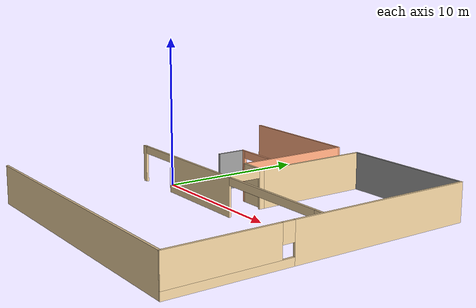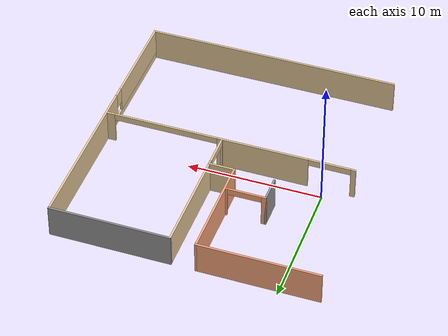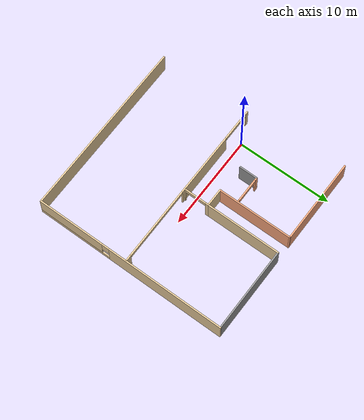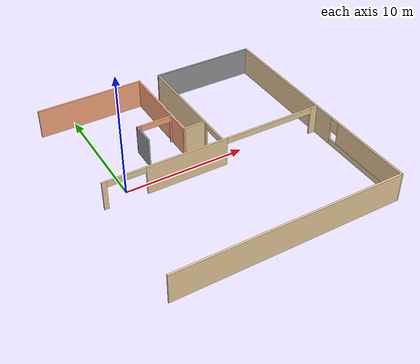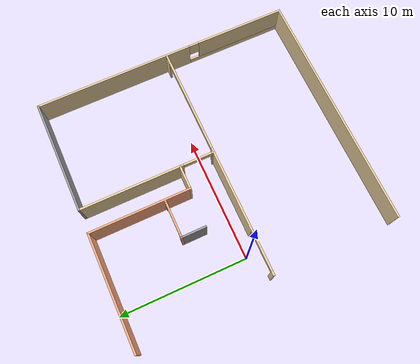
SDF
<sdf version="1.6">
 <model name="myhouse">
  <link name="Wall_15">
   <pose>12.2 9.625 0 0 -0 3.14159</pose>
   <visual name="Wall_15_Visual">
    <pose>0 0 1.25 0 -0 0</pose>
    <geometry><box><size>9 0.15 2.5</size></box></geometry>
    <material>
     <script><uri>file://media/materials/scripts/gazebo.material</uri><name>Gazebo/Grey</name></script>
     <ambient>1 1 1 1</ambient>
     <diffuse>0.7 0.7 0.7 1</diffuse>
     <specular>0.01 0.01 0.01 1</specular>
     <emissive>0 0 0 1</emissive>
    </material>
   </visual>
   <collision name="Wall_15_Collision">
    <pose>0 0 1.25 0 -0 0</pose>
    <geometry><box><size>9 0.15 2.5</size></box></geometry>
    <surface>
     <friction>
      <ode><mu>1</mu><mu2>1</mu2><fdir1>0 0 0</fdir1><slip1>0</slip1><slip2>0</slip2></ode>
      <torsional>
       <coefficient>1</coefficient>
       <patch_radius>0</patch_radius>
       <surface_radius>0</surface_radius>
       <use_patch_radius>1</use_patch_radius>
       <ode><slip>0</slip></ode>
      </torsional>
     </friction>
     <bounce><restitution_coefficient>0</restitution_coefficient><threshold>1e+06</threshold></bounce>
     <contact>
      <collide_without_contact>0</collide_without_contact>
      <collide_without_contact_bitmask>1</collide_without_contact_bitmask>
      <collide_bitmask>1</collide_bitmask>
      <ode>
       <soft_cfm>0</soft_cfm>
       <soft_erp>0.2</soft_erp>
       <kp>1e+13</kp>
       <kd>1</kd>
       <max_vel>0.01</max_vel>
       <min_depth>0</min_depth>
      </ode>
      <bullet>
       <split_impulse>1</split_impulse>
       <split_impulse_penetration_threshold>-0.01</split_impulse_penetration_threshold>
       <soft_cfm>0</soft_cfm>
       <soft_erp>0.2</soft_erp>
       <kp>1e+13</kp>
       <kd>1</kd>
      </bullet>
     </contact>
    </surface>
   </collision>
  </link>
  <link name="Wall_17">
   <pose>7.775 5.7 0 0 0 -1.5708</pose>
   <visual name="Wall_17_Visual">
    <pose>0 0 1.25 0 -0 0</pose>
    <geometry><box><size>8 0.15 2.5</size></box></geometry>
    <material>
     <script><uri>file://media/materials/scripts/gazebo.material</uri><name>Gazebo/Grey</name></script>
     <ambient>0.921569 0.807843 0.615686 1</ambient>
     <diffuse>0.7 0.7 0.7 1</diffuse>
     <specular>0.01 0.01 0.01 1</specular>
     <emissive>0 0 0 1</emissive>
    </material>
   </visual>
   <collision name="Wall_17_Collision">
    <pose>0 0 1.25 0 -0 0</pose>
    <geometry><box><size>8 0.15 2.5</size></box></geometry>
    <surface>
     <friction>
      <ode><mu>1</mu><mu2>1</mu2><fdir1>0 0 0</fdir1><slip1>0</slip1><slip2>0</slip2></ode>
      <torsional>
       <coefficient>1</coefficient>
       <patch_radius>0</patch_radius>
       <surface_radius>0</surface_radius>
       <use_patch_radius>1</use_patch_radius>
       <ode><slip>0</slip></ode>
      </torsional>
     </friction>
     <bounce><restitution_coefficient>0</restitution_coefficient><threshold>1e+06</threshold></bounce>
     <contact>
      <collide_without_contact>0</collide_without_contact>
      <collide_without_contact_bitmask>1</collide_without_contact_bitmask>
      <collide_bitmask>1</collide_bitmask>
      <ode>
       <soft_cfm>0</soft_cfm>
       <soft_erp>0.2</soft_erp>
       <kp>1e+13</kp>
       <kd>1</kd>
       <max_vel>0.01</max_vel>
       <min_depth>0</min_depth>
      </ode>
      <bullet>
       <split_impulse>1</split_impulse>
       <split_impulse_penetration_threshold>-0.01</split_impulse_penetration_threshold>
       <soft_cfm>0</soft_cfm>
       <soft_erp>0.2</soft_erp>
       <kp>1e+13</kp>
       <kd>1</kd>
      </bullet>
     </contact>
    </surface>
   </collision>
  </link>
  <link name="Wall_19">
   <pose>6.85 1.775 0 0 -0 3.14159</pose>
   <visual name="Wall_19_Visual">
    <pose>0 0 1.25 0 -0 0</pose>
    <geometry><box><size>2 0.15 2.5</size></box></geometry>
    <material>
     <script><uri>file://media/materials/scripts/gazebo.material</uri><name>Gazebo/Grey</name></script>
     <ambient>0.921569 0.807843 0.615686 1</ambient>
     <diffuse>0.7 0.7 0.7 1</diffuse>
     <specular>0.01 0.01 0.01 1</specular>
     <emissive>0 0 0 1</emissive>
    </material>
   </visual>
   <collision name="Wall_19_Collision">
    <pose>0 0 1.25 0 -0 0</pose>
    <geometry><box><size>2 0.15 2.5</size></box></geometry>
    <surface>
     <friction>
      <ode><mu>1</mu><mu2>1</mu2><fdir1>0 0 0</fdir1><slip1>0</slip1><slip2>0</slip2></ode>
      <torsional>
       <coefficient>1</coefficient>
       <patch_radius>0</patch_radius>
       <surface_radius>0</surface_radius>
       <use_patch_radius>1</use_patch_radius>
       <ode><slip>0</slip></ode>
      </torsional>
     </friction>
     <bounce><restitution_coefficient>0</restitution_coefficient><threshold>1e+06</threshold></bounce>
     <contact>
      <collide_without_contact>0</collide_without_contact>
      <collide_without_contact_bitmask>1</collide_without_contact_bitmask>
      <collide_bitmask>1</collide_bitmask>
      <ode>
       <soft_cfm>0</soft_cfm>
       <soft_erp>0.2</soft_erp>
       <kp>1e+13</kp>
       <kd>1</kd>
       <max_vel>0.01</max_vel>
       <min_depth>0</min_depth>
      </ode>
      <bullet>
       <split_impulse>1</split_impulse>
       <split_impulse_penetration_threshold>-0.01</split_impulse_penetration_threshold>
       <soft_cfm>0</soft_cfm>
       <soft_erp>0.2</soft_erp>
       <kp>1e+13</kp>
       <kd>1</kd>
      </bullet>
     </contact>
    </surface>
   </collision>
  </link>
  <link name="Wall_20">
   <pose>5.925 5.7 0 0 -0 1.5708</pose>
   <visual name="Wall_20_Visual">
    <pose>0 0 1.25 0 -0 0</pose>
    <geometry><box><size>8 0.15 2.5</size></box></geometry>
    <material>
     <script><uri>file://media/materials/scripts/gazebo.material</uri><name>Gazebo/Grey</name></script>
     <ambient>1 0.666667 0.498039 1</ambient>
     <diffuse>0.7 0.7 0.7 1</diffuse>
     <specular>0.01 0.01 0.01 1</specular>
     <emissive>0 0 0 1</emissive>
    </material>
   </visual>
   <collision name="Wall_20_Collision">
    <pose>0 0 1.25 0 -0 0</pose>
    <geometry><box><size>8 0.15 2.5</size></box></geometry>
    <surface>
     <friction>
      <ode><mu>1</mu><mu2>1</mu2><fdir1>0 0 0</fdir1><slip1>0</slip1><slip2>0</slip2></ode>
      <torsional>
       <coefficient>1</coefficient>
       <patch_radius>0</patch_radius>
       <surface_radius>0</surface_radius>
       <use_patch_radius>1</use_patch_radius>
       <ode><slip>0</slip></ode>
      </torsional>
     </friction>
     <bounce><restitution_coefficient>0</restitution_coefficient><threshold>1e+06</threshold></bounce>
     <contact>
      <collide_without_contact>0</collide_without_contact>
      <collide_without_contact_bitmask>1</collide_without_contact_bitmask>
      <collide_bitmask>1</collide_bitmask>
      <ode>
       <soft_cfm>0</soft_cfm>
       <soft_erp>0.2</soft_erp>
       <kp>1e+13</kp>
       <kd>1</kd>
       <max_vel>0.01</max_vel>
       <min_depth>0</min_depth>
      </ode>
      <bullet>
       <split_impulse>1</split_impulse>
       <split_impulse_penetration_threshold>-0.01</split_impulse_penetration_threshold>
       <soft_cfm>0</soft_cfm>
       <soft_erp>0.2</soft_erp>
       <kp>1e+13</kp>
       <kd>1</kd>
      </bullet>
     </contact>
    </surface>
   </collision>
  </link>
  <link name="Wall_22">
   <pose>1.5 9.625 0 0 -0 3.14159</pose>
   <visual name="Wall_22_Visual">
    <pose>0 0 1.25 0 -0 0</pose>
    <geometry><box><size>9 0.15 2.5</size></box></geometry>
    <material>
     <script><uri>file://media/materials/scripts/gazebo.material</uri><name>Gazebo/Grey</name></script>
     <ambient>1 0.666667 0.498039 1</ambient>
     <diffuse>0.7 0.7 0.7 1</diffuse>
     <specular>0.01 0.01 0.01 1</specular>
     <emissive>0 0 0 1</emissive>
    </material>
   </visual>
   <collision name="Wall_22_Collision">
    <pose>0 0 1.25 0 -0 0</pose>
    <geometry><box><size>9 0.15 2.5</size></box></geometry>
    <surface>
     <friction>
      <ode><mu>1</mu><mu2>1</mu2><fdir1>0 0 0</fdir1><slip1>0</slip1><slip2>0</slip2></ode>
      <torsional>
       <coefficient>1</coefficient>
       <patch_radius>0</patch_radius>
       <surface_radius>0</surface_radius>
       <use_patch_radius>1</use_patch_radius>
       <ode><slip>0</slip></ode>
      </torsional>
     </friction>
     <bounce><restitution_coefficient>0</restitution_coefficient><threshold>1e+06</threshold></bounce>
     <contact>
      <collide_without_contact>0</collide_without_contact>
      <collide_without_contact_bitmask>1</collide_without_contact_bitmask>
      <collide_bitmask>1</collide_bitmask>
      <ode>
       <soft_cfm>0</soft_cfm>
       <soft_erp>0.2</soft_erp>
       <kp>1e+13</kp>
       <kd>1</kd>
       <max_vel>0.01</max_vel>
       <min_depth>0</min_depth>
      </ode>
      <bullet>
       <split_impulse>1</split_impulse>
       <split_impulse_penetration_threshold>-0.01</split_impulse_penetration_threshold>
       <soft_cfm>0</soft_cfm>
       <soft_erp>0.2</soft_erp>
       <kp>1e+13</kp>
       <kd>1</kd>
      </bullet>
     </contact>
    </surface>
   </collision>
  </link>
  <link name="Wall_26">
   <pose>2.925 2.85 0 0 0 -1.5708</pose>
   <visual name="Wall_26_Visual">
    <pose>0 0 1.25 0 -0 0</pose>
    <geometry><box><size>2 0.15 2.5</size></box></geometry>
    <material>
     <script><uri>file://media/materials/scripts/gazebo.material</uri><name>Gazebo/Grey</name></script>
     <ambient>1 1 1 1</ambient>
     <diffuse>0.7 0.7 0.7 1</diffuse>
     <specular>0.01 0.01 0.01 1</specular>
     <emissive>0 0 0 1</emissive>
    </material>
   </visual>
   <collision name="Wall_26_Collision">
    <pose>0 0 1.25 0 -0 0</pose>
    <geometry><box><size>2 0.15 2.5</size></box></geometry>
    <surface>
     <friction>
      <ode><mu>1</mu><mu2>1</mu2><fdir1>0 0 0</fdir1><slip1>0</slip1><slip2>0</slip2></ode>
      <torsional>
       <coefficient>1</coefficient>
       <patch_radius>0</patch_radius>
       <surface_radius>0</surface_radius>
       <use_patch_radius>1</use_patch_radius>
       <ode><slip>0</slip></ode>
      </torsional>
     </friction>
     <bounce><restitution_coefficient>0</restitution_coefficient><threshold>1e+06</threshold></bounce>
     <contact>
      <collide_without_contact>0</collide_without_contact>
      <collide_without_contact_bitmask>1</collide_without_contact_bitmask>
      <collide_bitmask>1</collide_bitmask>
      <ode>
       <soft_cfm>0</soft_cfm>
       <soft_erp>0.2</soft_erp>
       <kp>1e+13</kp>
       <kd>1</kd>
       <max_vel>0.01</max_vel>
       <min_depth>0</min_depth>
      </ode>
      <bullet>
       <split_impulse>1</split_impulse>
       <split_impulse_penetration_threshold>-0.01</split_impulse_penetration_threshold>
       <soft_cfm>0</soft_cfm>
       <soft_erp>0.2</soft_erp>
       <kp>1e+13</kp>
       <kd>1</kd>
      </bullet>
     </contact>
    </surface>
   </collision>
  </link>
  <link name="Wall_40">
   <pose>16.625 -0.575 0 0 0 -1.5708</pose>
   <visual name="Wall_40_Visual_0">
    <pose>-3.99354 0 1.25 0 -0 0</pose>
    <geometry><box><size>12.5629 0.15 2.5</size></box></geometry>
    <material>
     <script><uri>file://media/materials/scripts/gazebo.material</uri><name>Gazebo/Grey</name></script>
     <ambient>0.921569 0.807843 0.615686 1</ambient>
     <diffuse>0.7 0.7 0.7 1</diffuse>
     <specular>0.01 0.01 0.01 1</specular>
     <emissive>0 0 0 1</emissive>
    </material>
   </visual>
   <visual name="Wall_40_Visual_1">
    <pose>6.28146 0 0.25 0 -0 0</pose>
    <geometry><box><size>7.98707 0.15 0.5</size></box></geometry>
    <material>
     <script><uri>file://media/materials/scripts/gazebo.material</uri><name>Gazebo/Grey</name></script>
     <ambient>0.921569 0.807843 0.615686 1</ambient>
     <diffuse>0.7 0.7 0.7 1</diffuse>
     <specular>0.01 0.01 0.01 1</specular>
     <emissive>0 0 0 1</emissive>
    </material>
   </visual>
   <visual name="Wall_40_Visual_2">
    <pose>6.68146 0 1.5 0 -0 0</pose>
    <geometry><box><size>7.18707 0.15 2</size></box></geometry>
    <material>
     <script><uri>file://media/materials/scripts/gazebo.material</uri><name>Gazebo/Grey</name></script>
     <ambient>0.921569 0.807843 0.615686 1</ambient>
     <diffuse>0.7 0.7 0.7 1</diffuse>
     <specular>0.01 0.01 0.01 1</specular>
     <emissive>0 0 0 1</emissive>
    </material>
   </visual>
   <visual name="Wall_40_Visual_3">
    <pose>2.68793 0 1.9 0 -0 0</pose>
    <geometry><box><size>0.8 0.15 1.2</size></box></geometry>
    <material>
     <script><uri>file://media/materials/scripts/gazebo.material</uri><name>Gazebo/Grey</name></script>
     <ambient>0.921569 0.807843 0.615686 1</ambient>
     <diffuse>0.7 0.7 0.7 1</diffuse>
     <specular>0.01 0.01 0.01 1</specular>
     <emissive>0 0 0 1</emissive>
    </material>
   </visual>
   <collision name="Wall_40_Collision_0">
    <pose>-3.99354 0 1.25 0 -0 0</pose>
    <geometry><box><size>12.5629 0.15 2.5</size></box></geometry>
    <surface>
     <friction>
      <ode><mu>1</mu><mu2>1</mu2><fdir1>0 0 0</fdir1><slip1>0</slip1><slip2>0</slip2></ode>
      <torsional>
       <coefficient>1</coefficient>
       <patch_radius>0</patch_radius>
       <surface_radius>0</surface_radius>
       <use_patch_radius>1</use_patch_radius>
       <ode><slip>0</slip></ode>
      </torsional>
     </friction>
     <bounce><restitution_coefficient>0</restitution_coefficient><threshold>1e+06</threshold></bounce>
     <contact>
      <collide_without_contact>0</collide_without_contact>
      <collide_without_contact_bitmask>1</collide_without_contact_bitmask>
      <collide_bitmask>1</collide_bitmask>
      <ode>
       <soft_cfm>0</soft_cfm>
       <soft_erp>0.2</soft_erp>
       <kp>1e+13</kp>
       <kd>1</kd>
       <max_vel>0.01</max_vel>
       <min_depth>0</min_depth>
      </ode>
      <bullet>
       <split_impulse>1</split_impulse>
       <split_impulse_penetration_threshold>-0.01</split_impulse_penetration_threshold>
       <soft_cfm>0</soft_cfm>
       <soft_erp>0.2</soft_erp>
       <kp>1e+13</kp>
       <kd>1</kd>
      </bullet>
     </contact>
    </surface>
   </collision>
   <collision name="Wall_40_Collision_1">
    <pose>6.28146 0 0.25 0 -0 0</pose>
    <geometry><box><size>7.98707 0.15 0.5</size></box></geometry>
    <surface>
     <friction>
      <ode><mu>1</mu><mu2>1</mu2><fdir1>0 0 0</fdir1><slip1>0</slip1><slip2>0</slip2></ode>
      <torsional>
       <coefficient>1</coefficient>
       <patch_radius>0</patch_radius>
       <surface_radius>0</surface_radius>
       <use_patch_radius>1</use_patch_radius>
       <ode><slip>0</slip></ode>
      </torsional>
     </friction>
     <bounce><restitution_coefficient>0</restitution_coefficient><threshold>1e+06</threshold></bounce>
     <contact>
      <collide_without_contact>0</collide_without_contact>
      <collide_without_contact_bitmask>1</collide_without_contact_bitmask>
      <collide_bitmask>1</collide_bitmask>
      <ode>
       <soft_cfm>0</soft_cfm>
       <soft_erp>0.2</soft_erp>
       <kp>1e+13</kp>
       <kd>1</kd>
       <max_vel>0.01</max_vel>
       <min_depth>0</min_depth>
      </ode>
      <bullet>
       <split_impulse>1</split_impulse>
       <split_impulse_penetration_threshold>-0.01</split_impulse_penetration_threshold>
       <soft_cfm>0</soft_cfm>
       <soft_erp>0.2</soft_erp>
       <kp>1e+13</kp>
       <kd>1</kd>
      </bullet>
     </contact>
    </surface>
   </collision>
   <collision name="Wall_40_Collision_2">
    <pose>6.68146 0 1.5 0 -0 0</pose>
    <geometry><box><size>7.18707 0.15 2</size></box></geometry>
    <surface>
     <friction>
      <ode><mu>1</mu><mu2>1</mu2><fdir1>0 0 0</fdir1><slip1>0</slip1><slip2>0</slip2></ode>
      <torsional>
       <coefficient>1</coefficient>
       <patch_radius>0</patch_radius>
       <surface_radius>0</surface_radius>
       <use_patch_radius>1</use_patch_radius>
       <ode><slip>0</slip></ode>
      </torsional>
     </friction>
     <bounce><restitution_coefficient>0</restitution_coefficient><threshold>1e+06</threshold></bounce>
     <contact>
      <collide_without_contact>0</collide_without_contact>
      <collide_without_contact_bitmask>1</collide_without_contact_bitmask>
      <collide_bitmask>1</collide_bitmask>
      <ode>
       <soft_cfm>0</soft_cfm>
       <soft_erp>0.2</soft_erp>
       <kp>1e+13</kp>
       <kd>1</kd>
       <max_vel>0.01</max_vel>
       <min_depth>0</min_depth>
      </ode>
      <bullet>
       <split_impulse>1</split_impulse>
       <split_impulse_penetration_threshold>-0.01</split_impulse_penetration_threshold>
       <soft_cfm>0</soft_cfm>
       <soft_erp>0.2</soft_erp>
       <kp>1e+13</kp>
       <kd>1</kd>
      </bullet>
     </contact>
    </surface>
   </collision>
   <collision name="Wall_40_Collision_3">
    <pose>2.68793 0 1.9 0 -0 0</pose>
    <geometry><box><size>0.8 0.15 1.2</size></box></geometry>
    <surface>
     <friction>
      <ode><mu>1</mu><mu2>1</mu2><fdir1>0 0 0</fdir1><slip1>0</slip1><slip2>0</slip2></ode>
      <torsional>
       <coefficient>1</coefficient>
       <patch_radius>0</patch_radius>
       <surface_radius>0</surface_radius>
       <use_patch_radius>1</use_patch_radius>
       <ode><slip>0</slip></ode>
      </torsional>
     </friction>
     <bounce><restitution_coefficient>0</restitution_coefficient><threshold>1e+06</threshold></bounce>
     <contact>
      <collide_without_contact>0</collide_without_contact>
      <collide_without_contact_bitmask>1</collide_without_contact_bitmask>
      <collide_bitmask>1</collide_bitmask>
      <ode>
       <soft_cfm>0</soft_cfm>
       <soft_erp>0.2</soft_erp>
       <kp>1e+13</kp>
       <kd>1</kd>
       <max_vel>0.01</max_vel>
       <min_depth>0</min_depth>
      </ode>
      <bullet>
       <split_impulse>1</split_impulse>
       <split_impulse_penetration_threshold>-0.01</split_impulse_penetration_threshold>
       <soft_cfm>0</soft_cfm>
       <soft_erp>0.2</soft_erp>
       <kp>1e+13</kp>
       <kd>1</kd>
      </bullet>
     </contact>
    </surface>
   </collision>
  </link>
  <link name="Wall_44">
   <pose>7.225 -10.775 0 0 -0 0</pose>
   <visual name="Wall_44_Visual">
    <pose>0 0 1.25 0 -0 0</pose>
    <geometry><box><size>18.75 0.15 2.5</size></box></geometry>
    <material>
     <script><uri>file://media/materials/scripts/gazebo.material</uri><name>Gazebo/Grey</name></script>
     <ambient>0.921569 0.807843 0.615686 1</ambient>
     <diffuse>0.7 0.7 0.7 1</diffuse>
     <specular>0.01 0.01 0.01 1</specular>
     <emissive>0 0 0 1</emissive>
    </material>
   </visual>
   <collision name="Wall_44_Collision">
    <pose>0 0 1.25 0 -0 0</pose>
    <geometry><box><size>18.75 0.15 2.5</size></box></geometry>
    <surface>
     <friction>
      <ode><mu>1</mu><mu2>1</mu2><fdir1>0 0 0</fdir1><slip1>0</slip1><slip2>0</slip2></ode>
      <torsional>
       <coefficient>1</coefficient>
       <patch_radius>0</patch_radius>
       <surface_radius>0</surface_radius>
       <use_patch_radius>1</use_patch_radius>
       <ode><slip>0</slip></ode>
      </torsional>
     </friction>
     <bounce><restitution_coefficient>0</restitution_coefficient><threshold>1e+06</threshold></bounce>
     <contact>
      <collide_without_contact>0</collide_without_contact>
      <collide_without_contact_bitmask>1</collide_without_contact_bitmask>
      <collide_bitmask>1</collide_bitmask>
      <ode>
       <soft_cfm>0</soft_cfm>
       <soft_erp>0.2</soft_erp>
       <kp>1e+13</kp>
       <kd>1</kd>
       <max_vel>0.01</max_vel>
       <min_depth>0</min_depth>
      </ode>
      <bullet>
       <split_impulse>1</split_impulse>
       <split_impulse_penetration_threshold>-0.01</split_impulse_penetration_threshold>
       <soft_cfm>0</soft_cfm>
       <soft_erp>0.2</soft_erp>
       <kp>1e+13</kp>
       <kd>1</kd>
      </bullet>
     </contact>
    </surface>
   </collision>
  </link>
  <link name="Wall_48">
   <pose>7.225 -0.924999 0 0 -0 0</pose>
   <visual name="Wall_48_Visual_0">
    <pose>-9.19055 0 1.25 0 -0 0</pose>
    <geometry><box><size>0.3689 0.15 2.5</size></box></geometry>
    <material>
     <script><uri>file://media/materials/scripts/gazebo.material</uri><name>Gazebo/Grey</name></script>
     <ambient>0.921569 0.807843 0.615686 1</ambient>
     <diffuse>0.7 0.7 0.7 1</diffuse>
     <specular>0.01 0.01 0.01 1</specular>
     <emissive>0 0 0 1</emissive>
    </material>
   </visual>
   <visual name="Wall_48_Visual_1">
    <pose>-2.48259 0 1.25 0 -0 0</pose>
    <geometry><box><size>6.80594 0.15 2.5</size></box></geometry>
    <material>
     <script><uri>file://media/materials/scripts/gazebo.material</uri><name>Gazebo/Grey</name></script>
     <ambient>0.921569 0.807843 0.615686 1</ambient>
     <diffuse>0.7 0.7 0.7 1</diffuse>
     <specular>0.01 0.01 0.01 1</specular>
     <emissive>0 0 0 1</emissive>
    </material>
   </visual>
   <visual name="Wall_48_Visual_2">
    <pose>9.04701 0 1.25 0 -0 0</pose>
    <geometry><box><size>0.655974 0.15 2.5</size></box></geometry>
    <material>
     <script><uri>file://media/materials/scripts/gazebo.material</uri><name>Gazebo/Grey</name></script>
     <ambient>0.921569 0.807843 0.615686 1</ambient>
     <diffuse>0.7 0.7 0.7 1</diffuse>
     <specular>0.01 0.01 0.01 1</specular>
     <emissive>0 0 0 1</emissive>
    </material>
   </visual>
   <visual name="Wall_48_Visual_3">
    <pose>-7.44583 0 2.25 0 -0 0</pose>
    <geometry><box><size>3.12054 0.15 0.5</size></box></geometry>
    <material>
     <script><uri>file://media/materials/scripts/gazebo.material</uri><name>Gazebo/Grey</name></script>
     <ambient>0.921569 0.807843 0.615686 1</ambient>
     <diffuse>0.7 0.7 0.7 1</diffuse>
     <specular>0.01 0.01 0.01 1</specular>
     <emissive>0 0 0 1</emissive>
    </material>
   </visual>
   <visual name="Wall_48_Visual_4">
    <pose>4.8197 0 2.25 0 -0 0</pose>
    <geometry><box><size>7.79865 0.15 0.5</size></box></geometry>
    <material>
     <script><uri>file://media/materials/scripts/gazebo.material</uri><name>Gazebo/Grey</name></script>
     <ambient>0.921569 0.807843 0.615686 1</ambient>
     <diffuse>0.7 0.7 0.7 1</diffuse>
     <specular>0.01 0.01 0.01 1</specular>
     <emissive>0 0 0 1</emissive>
    </material>
   </visual>
   <collision name="Wall_48_Collision_2">
    <pose>9.04701 0 1.25 0 -0 0</pose>
    <geometry><box><size>0.655974 0.15 2.5</size></box></geometry>
    <surface>
     <friction>
      <ode><mu>1</mu><mu2>1</mu2><fdir1>0 0 0</fdir1><slip1>0</slip1><slip2>0</slip2></ode>
      <torsional>
       <coefficient>1</coefficient>
       <patch_radius>0</patch_radius>
       <surface_radius>0</surface_radius>
       <use_patch_radius>1</use_patch_radius>
       <ode><slip>0</slip></ode>
      </torsional>
     </friction>
     <bounce><restitution_coefficient>0</restitution_coefficient><threshold>1e+06</threshold></bounce>
     <contact>
      <collide_without_contact>0</collide_without_contact>
      <collide_without_contact_bitmask>1</collide_without_contact_bitmask>
      <collide_bitmask>1</collide_bitmask>
      <ode>
       <soft_cfm>0</soft_cfm>
       <soft_erp>0.2</soft_erp>
       <kp>1e+13</kp>
       <kd>1</kd>
       <max_vel>0.01</max_vel>
       <min_depth>0</min_depth>
      </ode>
      <bullet>
       <split_impulse>1</split_impulse>
       <split_impulse_penetration_threshold>-0.01</split_impulse_penetration_threshold>
       <soft_cfm>0</soft_cfm>
       <soft_erp>0.2</soft_erp>
       <kp>1e+13</kp>
       <kd>1</kd>
      </bullet>
     </contact>
    </surface>
   </collision>
   <collision name="Wall_48_Collision_0">
    <pose>-9.19055 0 1.25 0 -0 0</pose>
    <geometry><box><size>0.3689 0.15 2.5</size></box></geometry>
    <surface>
     <friction>
      <ode><mu>1</mu><mu2>1</mu2><fdir1>0 0 0</fdir1><slip1>0</slip1><slip2>0</slip2></ode>
      <torsional>
       <coefficient>1</coefficient>
       <patch_radius>0</patch_radius>
       <surface_radius>0</surface_radius>
       <use_patch_radius>1</use_patch_radius>
       <ode><slip>0</slip></ode>
      </torsional>
     </friction>
     <bounce><restitution_coefficient>0</restitution_coefficient><threshold>1e+06</threshold></bounce>
     <contact>
      <collide_without_contact>0</collide_without_contact>
      <collide_without_contact_bitmask>1</collide_without_contact_bitmask>
      <collide_bitmask>1</collide_bitmask>
      <ode>
       <soft_cfm>0</soft_cfm>
       <soft_erp>0.2</soft_erp>
       <kp>1e+13</kp>
       <kd>1</kd>
       <max_vel>0.01</max_vel>
       <min_depth>0</min_depth>
      </ode>
      <bullet>
       <split_impulse>1</split_impulse>
       <split_impulse_penetration_threshold>-0.01</split_impulse_penetration_threshold>
       <soft_cfm>0</soft_cfm>
       <soft_erp>0.2</soft_erp>
       <kp>1e+13</kp>
       <kd>1</kd>
      </bullet>
     </contact>
    </surface>
   </collision>
   <collision name="Wall_48_Collision_1">
    <pose>-2.48259 0 1.25 0 -0 0</pose>
    <geometry><box><size>6.80594 0.15 2.5</size></box></geometry>
    <surface>
     <friction>
      <ode><mu>1</mu><mu2>1</mu2><fdir1>0 0 0</fdir1><slip1>0</slip1><slip2>0</slip2></ode>
      <torsional>
       <coefficient>1</coefficient>
       <patch_radius>0</patch_radius>
       <surface_radius>0</surface_radius>
       <use_patch_radius>1</use_patch_radius>
       <ode><slip>0</slip></ode>
      </torsional>
     </friction>
     <bounce><restitution_coefficient>0</restitution_coefficient><threshold>1e+06</threshold></bounce>
     <contact>
      <collide_without_contact>0</collide_without_contact>
      <collide_without_contact_bitmask>1</collide_without_contact_bitmask>
      <collide_bitmask>1</collide_bitmask>
      <ode>
       <soft_cfm>0</soft_cfm>
       <soft_erp>0.2</soft_erp>
       <kp>1e+13</kp>
       <kd>1</kd>
       <max_vel>0.01</max_vel>
       <min_depth>0</min_depth>
      </ode>
      <bullet>
       <split_impulse>1</split_impulse>
       <split_impulse_penetration_threshold>-0.01</split_impulse_penetration_threshold>
       <soft_cfm>0</soft_cfm>
       <soft_erp>0.2</soft_erp>
       <kp>1e+13</kp>
       <kd>1</kd>
      </bullet>
     </contact>
    </surface>
   </collision>
   <collision name="Wall_48_Collision_3">
    <pose>-7.44583 0 2.25 0 -0 0</pose>
    <geometry><box><size>3.12054 0.15 0.5</size></box></geometry>
    <surface>
     <friction>
      <ode><mu>1</mu><mu2>1</mu2><fdir1>0 0 0</fdir1><slip1>0</slip1><slip2>0</slip2></ode>
      <torsional>
       <coefficient>1</coefficient>
       <patch_radius>0</patch_radius>
       <surface_radius>0</surface_radius>
       <use_patch_radius>1</use_patch_radius>
       <ode><slip>0</slip></ode>
      </torsional>
     </friction>
     <bounce><restitution_coefficient>0</restitution_coefficient><threshold>1e+06</threshold></bounce>
     <contact>
      <collide_without_contact>0</collide_without_contact>
      <collide_without_contact_bitmask>1</collide_without_contact_bitmask>
      <collide_bitmask>1</collide_bitmask>
      <ode>
       <soft_cfm>0</soft_cfm>
       <soft_erp>0.2</soft_erp>
       <kp>1e+13</kp>
       <kd>1</kd>
       <max_vel>0.01</max_vel>
       <min_depth>0</min_depth>
      </ode>
      <bullet>
       <split_impulse>1</split_impulse>
       <split_impulse_penetration_threshold>-0.01</split_impulse_penetration_threshold>
       <soft_cfm>0</soft_cfm>
       <soft_erp>0.2</soft_erp>
       <kp>1e+13</kp>
       <kd>1</kd>
      </bullet>
     </contact>
    </surface>
   </collision>
   <collision name="Wall_48_Collision_4">
    <pose>4.8197 0 2.25 0 -0 0</pose>
    <geometry><box><size>7.79865 0.15 0.5</size></box></geometry>
    <surface>
     <friction>
      <ode><mu>1</mu><mu2>1</mu2><fdir1>0 0 0</fdir1><slip1>0</slip1><slip2>0</slip2></ode>
      <torsional>
       <coefficient>1</coefficient>
       <patch_radius>0</patch_radius>
       <surface_radius>0</surface_radius>
       <use_patch_radius>1</use_patch_radius>
       <ode><slip>0</slip></ode>
      </torsional>
     </friction>
     <bounce><restitution_coefficient>0</restitution_coefficient><threshold>1e+06</threshold></bounce>
     <contact>
      <collide_without_contact>0</collide_without_contact>
      <collide_without_contact_bitmask>1</collide_without_contact_bitmask>
      <collide_bitmask>1</collide_bitmask>
      <ode>
       <soft_cfm>0</soft_cfm>
       <soft_erp>0.2</soft_erp>
       <kp>1e+13</kp>
       <kd>1</kd>
       <max_vel>0.01</max_vel>
       <min_depth>0</min_depth>
      </ode>
      <bullet>
       <split_impulse>1</split_impulse>
       <split_impulse_penetration_threshold>-0.01</split_impulse_penetration_threshold>
       <soft_cfm>0</soft_cfm>
       <soft_erp>0.2</soft_erp>
       <kp>1e+13</kp>
       <kd>1</kd>
      </bullet>
     </contact>
    </surface>
   </collision>
  </link>
  <link name="Wall_50">
   <pose>7.775 0.475001 0 0 0 -1.5708</pose>
   <visual name="Wall_50_Visual_0">
    <pose>-1.19597 0 1.25 0 -0 0</pose>
    <geometry><box><size>0.358051 0.15 2.5</size></box></geometry>
    <material>
     <script><uri>file://media/materials/scripts/gazebo.material</uri><name>Gazebo/Grey</name></script>
     <ambient>0.921569 0.807843 0.615686 1</ambient>
     <diffuse>0.7 0.7 0.7 1</diffuse>
     <specular>0.01 0.01 0.01 1</specular>
     <emissive>0 0 0 1</emissive>
    </material>
   </visual>
   <visual name="Wall_50_Visual_1">
    <pose>1.29981 0 1.25 0 -0 0</pose>
    <geometry><box><size>0.150373 0.15 2.5</size></box></geometry>
    <material>
     <script><uri>file://media/materials/scripts/gazebo.material</uri><name>Gazebo/Grey</name></script>
     <ambient>0.921569 0.807843 0.615686 1</ambient>
     <diffuse>0.7 0.7 0.7 1</diffuse>
     <specular>0.01 0.01 0.01 1</specular>
     <emissive>0 0 0 1</emissive>
    </material>
   </visual>
   <visual name="Wall_50_Visual_2">
    <pose>0.103839 0 2.25 0 -0 0</pose>
    <geometry><box><size>2.24158 0.15 0.5</size></box></geometry>
    <material>
     <script><uri>file://media/materials/scripts/gazebo.material</uri><name>Gazebo/Grey</name></script>
     <ambient>0.921569 0.807843 0.615686 1</ambient>
     <diffuse>0.7 0.7 0.7 1</diffuse>
     <specular>0.01 0.01 0.01 1</specular>
     <emissive>0 0 0 1</emissive>
    </material>
   </visual>
   <collision name="Wall_50_Collision_0">
    <pose>-1.19597 0 1.25 0 -0 0</pose>
    <geometry><box><size>0.358051 0.15 2.5</size></box></geometry>
    <surface>
     <friction>
      <ode><mu>1</mu><mu2>1</mu2><fdir1>0 0 0</fdir1><slip1>0</slip1><slip2>0</slip2></ode>
      <torsional>
       <coefficient>1</coefficient>
       <patch_radius>0</patch_radius>
       <surface_radius>0</surface_radius>
       <use_patch_radius>1</use_patch_radius>
       <ode><slip>0</slip></ode>
      </torsional>
     </friction>
     <bounce><restitution_coefficient>0</restitution_coefficient><threshold>1e+06</threshold></bounce>
     <contact>
      <collide_without_contact>0</collide_without_contact>
      <collide_without_contact_bitmask>1</collide_without_contact_bitmask>
      <collide_bitmask>1</collide_bitmask>
      <ode>
       <soft_cfm>0</soft_cfm>
       <soft_erp>0.2</soft_erp>
       <kp>1e+13</kp>
       <kd>1</kd>
       <max_vel>0.01</max_vel>
       <min_depth>0</min_depth>
      </ode>
      <bullet>
       <split_impulse>1</split_impulse>
       <split_impulse_penetration_threshold>-0.01</split_impulse_penetration_threshold>
       <soft_cfm>0</soft_cfm>
       <soft_erp>0.2</soft_erp>
       <kp>1e+13</kp>
       <kd>1</kd>
      </bullet>
     </contact>
    </surface>
   </collision>
   <collision name="Wall_50_Collision_1">
    <pose>1.29981 0 1.25 0 -0 0</pose>
    <geometry><box><size>0.150373 0.15 2.5</size></box></geometry>
    <surface>
     <friction>
      <ode><mu>1</mu><mu2>1</mu2><fdir1>0 0 0</fdir1><slip1>0</slip1><slip2>0</slip2></ode>
      <torsional>
       <coefficient>1</coefficient>
       <patch_radius>0</patch_radius>
       <surface_radius>0</surface_radius>
       <use_patch_radius>1</use_patch_radius>
       <ode><slip>0</slip></ode>
      </torsional>
     </friction>
     <bounce><restitution_coefficient>0</restitution_coefficient><threshold>1e+06</threshold></bounce>
     <contact>
      <collide_without_contact>0</collide_without_contact>
      <collide_without_contact_bitmask>1</collide_without_contact_bitmask>
      <collide_bitmask>1</collide_bitmask>
      <ode>
       <soft_cfm>0</soft_cfm>
       <soft_erp>0.2</soft_erp>
       <kp>1e+13</kp>
       <kd>1</kd>
       <max_vel>0.01</max_vel>
       <min_depth>0</min_depth>
      </ode>
      <bullet>
       <split_impulse>1</split_impulse>
       <split_impulse_penetration_threshold>-0.01</split_impulse_penetration_threshold>
       <soft_cfm>0</soft_cfm>
       <soft_erp>0.2</soft_erp>
       <kp>1e+13</kp>
       <kd>1</kd>
      </bullet>
     </contact>
    </surface>
   </collision>
   <collision name="Wall_50_Collision_2">
    <pose>0.103839 0 2.25 0 -0 0</pose>
    <geometry><box><size>2.24158 0.15 0.5</size></box></geometry>
    <surface>
     <friction>
      <ode><mu>1</mu><mu2>1</mu2><fdir1>0 0 0</fdir1><slip1>0</slip1><slip2>0</slip2></ode>
      <torsional>
       <coefficient>1</coefficient>
       <patch_radius>0</patch_radius>
       <surface_radius>0</surface_radius>
       <use_patch_radius>1</use_patch_radius>
       <ode><slip>0</slip></ode>
      </torsional>
     </friction>
     <bounce><restitution_coefficient>0</restitution_coefficient><threshold>1e+06</threshold></bounce>
     <contact>
      <collide_without_contact>0</collide_without_contact>
      <collide_without_contact_bitmask>1</collide_without_contact_bitmask>
      <collide_bitmask>1</collide_bitmask>
      <ode>
       <soft_cfm>0</soft_cfm>
       <soft_erp>0.2</soft_erp>
       <kp>1e+13</kp>
       <kd>1</kd>
       <max_vel>0.01</max_vel>
       <min_depth>0</min_depth>
      </ode>
      <bullet>
       <split_impulse>1</split_impulse>
       <split_impulse_penetration_threshold>-0.01</split_impulse_penetration_threshold>
       <soft_cfm>0</soft_cfm>
       <soft_erp>0.2</soft_erp>
       <kp>1e+13</kp>
       <kd>1</kd>
      </bullet>
     </contact>
    </surface>
   </collision>
  </link>
  <link name="Wall_52">
   <pose>4.35 3.775 0 0 -0 0</pose>
   <visual name="Wall_52_Visual_0">
    <pose>-1.30967 0 1.25 0 -0 0</pose>
    <geometry><box><size>0.380655 0.15 2.5</size></box></geometry>
    <material>
     <script><uri>file://media/materials/scripts/gazebo.material</uri><name>Gazebo/Grey</name></script>
     <ambient>1 0.666667 0.498039 1</ambient>
     <diffuse>0.7 0.7 0.7 1</diffuse>
     <specular>0.01 0.01 0.01 1</specular>
     <emissive>0 0 0 1</emissive>
    </material>
   </visual>
   <visual name="Wall_52_Visual_1">
    <pose>1.43833 0 1.25 0 -0 0</pose>
    <geometry><box><size>0.123333 0.15 2.5</size></box></geometry>
    <material>
     <script><uri>file://media/materials/scripts/gazebo.material</uri><name>Gazebo/Grey</name></script>
     <ambient>1 0.666667 0.498039 1</ambient>
     <diffuse>0.7 0.7 0.7 1</diffuse>
     <specular>0.01 0.01 0.01 1</specular>
     <emissive>0 0 0 1</emissive>
    </material>
   </visual>
   <visual name="Wall_52_Visual_2">
    <pose>0.128661 0 2.25 0 -0 0</pose>
    <geometry><box><size>2.49601 0.15 0.5</size></box></geometry>
    <material>
     <script><uri>file://media/materials/scripts/gazebo.material</uri><name>Gazebo/Grey</name></script>
     <ambient>1 0.666667 0.498039 1</ambient>
     <diffuse>0.7 0.7 0.7 1</diffuse>
     <specular>0.01 0.01 0.01 1</specular>
     <emissive>0 0 0 1</emissive>
    </material>
   </visual>
   <collision name="Wall_52_Collision_0">
    <pose>-1.30967 0 1.25 0 -0 0</pose>
    <geometry><box><size>0.380655 0.15 2.5</size></box></geometry>
    <surface>
     <friction>
      <ode><mu>1</mu><mu2>1</mu2><fdir1>0 0 0</fdir1><slip1>0</slip1><slip2>0</slip2></ode>
      <torsional>
       <coefficient>1</coefficient>
       <patch_radius>0</patch_radius>
       <surface_radius>0</surface_radius>
       <use_patch_radius>1</use_patch_radius>
       <ode><slip>0</slip></ode>
      </torsional>
     </friction>
     <bounce><restitution_coefficient>0</restitution_coefficient><threshold>1e+06</threshold></bounce>
     <contact>
      <collide_without_contact>0</collide_without_contact>
      <collide_without_contact_bitmask>1</collide_without_contact_bitmask>
      <collide_bitmask>1</collide_bitmask>
      <ode>
       <soft_cfm>0</soft_cfm>
       <soft_erp>0.2</soft_erp>
       <kp>1e+13</kp>
       <kd>1</kd>
       <max_vel>0.01</max_vel>
       <min_depth>0</min_depth>
      </ode>
      <bullet>
       <split_impulse>1</split_impulse>
       <split_impulse_penetration_threshold>-0.01</split_impulse_penetration_threshold>
       <soft_cfm>0</soft_cfm>
       <soft_erp>0.2</soft_erp>
       <kp>1e+13</kp>
       <kd>1</kd>
      </bullet>
     </contact>
    </surface>
   </collision>
   <collision name="Wall_52_Collision_1">
    <pose>1.43833 0 1.25 0 -0 0</pose>
    <geometry><box><size>0.123333 0.15 2.5</size></box></geometry>
    <surface>
     <friction>
      <ode><mu>1</mu><mu2>1</mu2><fdir1>0 0 0</fdir1><slip1>0</slip1><slip2>0</slip2></ode>
      <torsional>
       <coefficient>1</coefficient>
       <patch_radius>0</patch_radius>
       <surface_radius>0</surface_radius>
       <use_patch_radius>1</use_patch_radius>
       <ode><slip>0</slip></ode>
      </torsional>
     </friction>
     <bounce><restitution_coefficient>0</restitution_coefficient><threshold>1e+06</threshold></bounce>
     <contact>
      <collide_without_contact>0</collide_without_contact>
      <collide_without_contact_bitmask>1</collide_without_contact_bitmask>
      <collide_bitmask>1</collide_bitmask>
      <ode>
       <soft_cfm>0</soft_cfm>
       <soft_erp>0.2</soft_erp>
       <kp>1e+13</kp>
       <kd>1</kd>
       <max_vel>0.01</max_vel>
       <min_depth>0</min_depth>
      </ode>
      <bullet>
       <split_impulse>1</split_impulse>
       <split_impulse_penetration_threshold>-0.01</split_impulse_penetration_threshold>
       <soft_cfm>0</soft_cfm>
       <soft_erp>0.2</soft_erp>
       <kp>1e+13</kp>
       <kd>1</kd>
      </bullet>
     </contact>
    </surface>
   </collision>
   <collision name="Wall_52_Collision_2">
    <pose>0.128661 0 2.25 0 -0 0</pose>
    <geometry><box><size>2.49601 0.15 0.5</size></box></geometry>
    <surface>
     <friction>
      <ode><mu>1</mu><mu2>1</mu2><fdir1>0 0 0</fdir1><slip1>0</slip1><slip2>0</slip2></ode>
      <torsional>
       <coefficient>1</coefficient>
       <patch_radius>0</patch_radius>
       <surface_radius>0</surface_radius>
       <use_patch_radius>1</use_patch_radius>
       <ode><slip>0</slip></ode>
      </torsional>
     </friction>
     <bounce><restitution_coefficient>0</restitution_coefficient><threshold>1e+06</threshold></bounce>
     <contact>
      <collide_without_contact>0</collide_without_contact>
      <collide_without_contact_bitmask>1</collide_without_contact_bitmask>
      <collide_bitmask>1</collide_bitmask>
      <ode>
       <soft_cfm>0</soft_cfm>
       <soft_erp>0.2</soft_erp>
       <kp>1e+13</kp>
       <kd>1</kd>
       <max_vel>0.01</max_vel>
       <min_depth>0</min_depth>
      </ode>
      <bullet>
       <split_impulse>1</split_impulse>
       <split_impulse_penetration_threshold>-0.01</split_impulse_penetration_threshold>
       <soft_cfm>0</soft_cfm>
       <soft_erp>0.2</soft_erp>
       <kp>1e+13</kp>
       <kd>1</kd>
      </bullet>
     </contact>
    </surface>
   </collision>
  </link>
  <static>1</static>
 </model>
</sdf>
